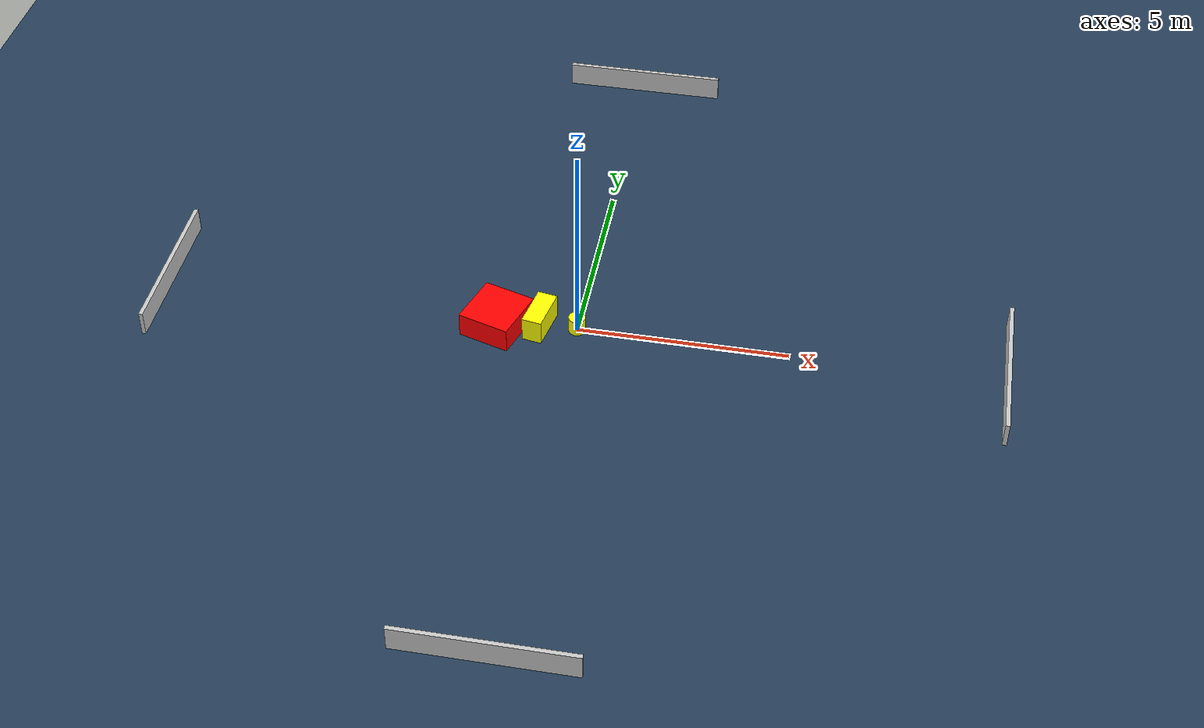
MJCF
<?xml version="1.0" ?>
<mujoco model="generated_environment">
  <option timestep="0.01" integrator="RK4" cone="elliptic"/>
  <default>
    <geom density="1"/>
  </default>
  <asset>
    <texture builtin="gradient" height="3072" name="skybox" rgb1="0.3 0.5 0.7" rgb2="0 0 0" type="skybox" width="512"/>
    <texture builtin="checker" height="300" name="groundplane" rgb1="0.2 0.3 0.4" rgb2="0.1 0.2 0.3" type="2d" width="300"/>
    <material name="groundplane" reflectance="0.2" texrepeat="5 5" texture="groundplane"/>
  </asset>
  <worldbody>
    <light dir="0 0 -1" directional="true" pos="0 0 1.5"/>
    <geom condim="3" friction="0.5 0.005 0.001" material="groundplane" name="floor" pos="0 0 0" size="0 0 0.05" type="plane"/>
    <body name="walls">
      <geom name="wall_1" condim="4" pos="-10.0 0.0 0.3" rgba="0.800000011920929 0.800000011920929 0.800000011920929 1.0" size="0.05 2.0 0.3" type="box"/>
      <geom name="wall_2" condim="4" pos="10.0 0.0 0.3" rgba="0.800000011920929 0.800000011920929 0.800000011920929 1.0" size="0.05 2.0 0.3" type="box"/>
      <geom name="wall_3" condim="4" pos="0.0 -10.0 0.3" rgba="0.800000011920929 0.800000011920929 0.800000011920929 1.0" size="2.0 0.05 0.3" type="box"/>
      <geom name="wall_4" condim="4" pos="0.0 10.0 0.3" rgba="0.800000011920929 0.800000011920929 0.800000011920929 1.0" size="2.0 0.05 0.3" type="box"/>
    </body>
    <body name="robot">
      <joint name="joint_x" type="slide" pos="0 0 0" axis="1 0 0"/>
      <joint name="joint_y" type="slide" pos="0 0 0" axis="0 1 0"/>
      <geom name="robot" type="cylinder" pos="0.0 0.0 0.2" size="0.2 0.2 0.0" mass="5.0" friction="1.0 0.005 0.0001" condim="4" rgba="1.0 1.0 0.0 1.0"/>
    </body>
    <body name="obstacle_1_movable">
      <geom name="obstacle_1_movable" condim="4" pos="-0.8860330704786198 -0.04570557480219766 0.3" euler="0 0 349.86501110031173" friction="0.0 0.005 0.001" rgba="1.0 1.0 0.0 1.0" size="0.23813216490561617 0.5342384366740774 0.3" type="box" mass="0.1"/>
      <joint type="free"/>
    </body>
    <body name="obstacle_2_static">
      <geom name="obstacle_2_static" condim="4" pos="-1.8876558702812771 -0.2042953727074727 0.3" euler="0 0 342.6780962705222" friction="0.0 0.005 0.001" rgba="1.0 0.0 0.0 1.0" size="0.6350441997692424 0.660121175525199 0.3" type="box"/>
    </body>
  </worldbody>
  <actuator>
    <motor name="actuator_x" joint="joint_x" gear="1" ctrlrange="-1 1"/>
    <motor name="actuator_y" joint="joint_y" gear="1" ctrlrange="-1 1"/>
  </actuator>
</mujoco>
